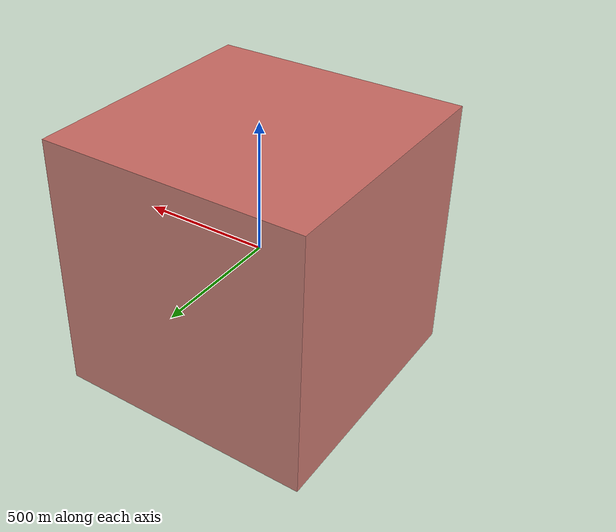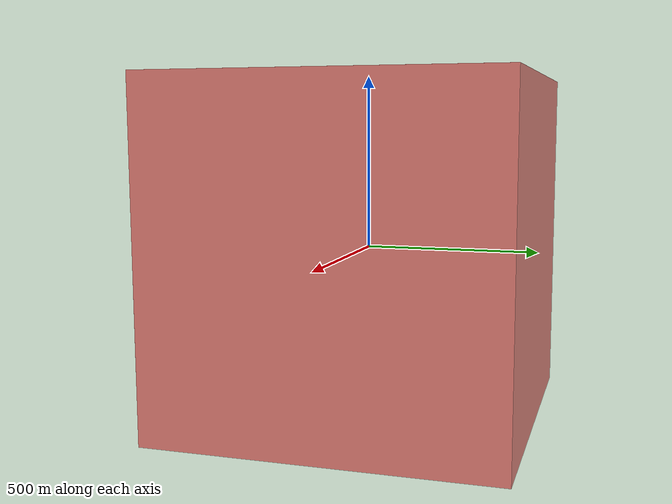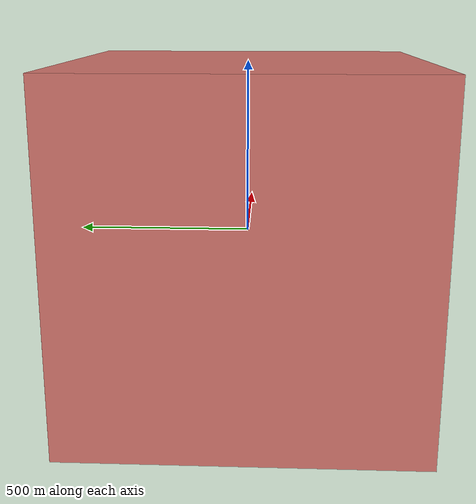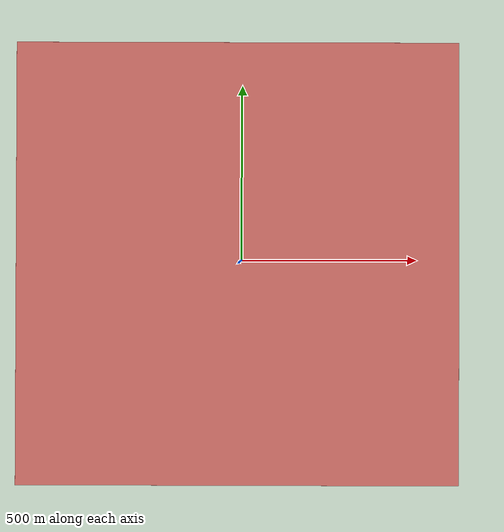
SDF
<?xml version='1.0'?>
<sdf version='1.6'>
  <model name='red_sky_filter'>
    <link name='link_1'>
      <pose frame=''>0 0 0 0 0 0</pose>
      <visual name='visual1'>
        <pose frame=''>-500 0 0 0 0 1.5708</pose>
        <geometry>
          <box>
            <size>1000 0.1 1000</size>
          </box>
        </geometry>
        <material>
          <script>
            <name>Gazebo/Red</name>
          </script>
          <ambient>1 0 0 1</ambient>
          <diffuse>1 0 0 1</diffuse>
          <specular>1 0 0 1</specular>
          <emissive>1 0 0 1</emissive>
        </material>
        <transparency>0.4</transparency>
      </visual>
      <visual name='visual2'>
        <pose frame=''>500 0 0 0 0 1.5708</pose>
        <geometry>
          <box>
            <size>1000 0.1 1000</size>
          </box>
        </geometry>
        <material>
          <script>
            <name>Gazebo/Red</name>
          </script>
          <ambient>1 0 0 1</ambient>
          <diffuse>1 0 0 1</diffuse>
          <specular>1 0 0 1</specular>
          <emissive>1 0 0 1</emissive>
        </material>
        <transparency>0.4</transparency>
      </visual>
      <visual name='visual3'>
        <pose frame=''>0 500 0 0 0 0</pose>
        <geometry>
          <box>
            <size>1000 0.1 1000</size>
          </box>
        </geometry>
        <material>
          <script>
            <name>Gazebo/Red</name>
          </script>
          <ambient>1 0 0 1</ambient>
          <diffuse>1 0 0 1</diffuse>
          <specular>1 0 0 1</specular>
          <emissive>1 0 0 1</emissive>
        </material>
        <transparency>0.4</transparency>
      </visual>
      <visual name='visual4'>
        <pose frame=''>0 -500 0 0 0 0</pose>
        <geometry>
          <box>
            <size>1000 0.1 1000</size>
          </box>
        </geometry>
        <material>
          <script>
            <name>Gazebo/Red</name>
          </script>
          <ambient>1 0 0 1</ambient>
          <diffuse>1 0 0 1</diffuse>
          <specular>1 0 0 1</specular>
          <emissive>1 0 0 1</emissive>
        </material>
        <transparency>0.4</transparency>
      </visual>
      <visual name='visual5'>
        <pose frame=''>0 0 500 0 0 0</pose>
        <geometry>
          <box>
            <size>1000 1000 0.1</size>
          </box>
        </geometry>
        <material>
          <script>
            <name>Gazebo/Red</name>
          </script>
          <ambient>1 0 0 1</ambient>
          <diffuse>1 0 0 1</diffuse>
          <specular>1 0 0 1</specular>
          <emissive>1 0 0 1</emissive>
        </material>
        <transparency>0.4</transparency>
      </visual>
    </link>
    <static>1</static>
    <allow_auto_disable>1</allow_auto_disable>
  </model>
</sdf>
